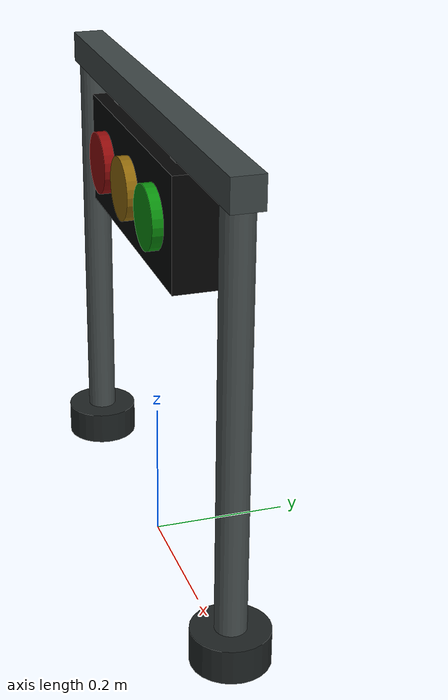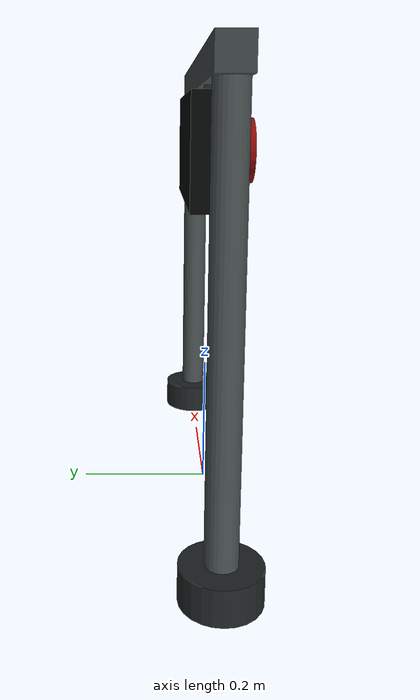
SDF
<?xml version="1.0"?>
<sdf version="1.6">
  <model name="traffic_light">
    <static>true</static>
    <link name="gantry">
      <collision name="left_post_collision">
        <pose>-0.34 0 0.32 0 0 0</pose>
        <geometry><cylinder><radius>0.022</radius><length>0.64</length></cylinder></geometry>
      </collision>
      <collision name="right_post_collision">
        <pose>0.34 0 0.32 0 0 0</pose>
        <geometry><cylinder><radius>0.022</radius><length>0.64</length></cylinder></geometry>
      </collision>
      <collision name="crossbar_collision">
        <pose>0 0 0.66 0 0 0</pose>
        <geometry><box><size>0.75 0.045 0.045</size></box></geometry>
      </collision>
      <collision name="housing_collision">
        <pose>0 0 0.55 0 0 0</pose>
        <geometry><box><size>0.40 0.075 0.16</size></box></geometry>
      </collision>

      <visual name="left_foot">
        <pose>-0.34 0 0.025 0 0 0</pose>
        <geometry><cylinder><radius>0.055</radius><length>0.05</length></cylinder></geometry>
        <material><ambient>0.06 0.07 0.07 1</ambient><diffuse>0.12 0.14 0.14 1</diffuse></material>
      </visual>
      <visual name="right_foot">
        <pose>0.34 0 0.025 0 0 0</pose>
        <geometry><cylinder><radius>0.055</radius><length>0.05</length></cylinder></geometry>
        <material><ambient>0.06 0.07 0.07 1</ambient><diffuse>0.12 0.14 0.14 1</diffuse></material>
      </visual>
      <visual name="left_post">
        <pose>-0.34 0 0.32 0 0 0</pose>
        <geometry><cylinder><radius>0.022</radius><length>0.64</length></cylinder></geometry>
        <material><ambient>0.16 0.18 0.18 1</ambient><diffuse>0.28 0.31 0.31 1</diffuse><specular>0.25 0.25 0.25 1</specular></material>
      </visual>
      <visual name="right_post">
        <pose>0.34 0 0.32 0 0 0</pose>
        <geometry><cylinder><radius>0.022</radius><length>0.64</length></cylinder></geometry>
        <material><ambient>0.16 0.18 0.18 1</ambient><diffuse>0.28 0.31 0.31 1</diffuse><specular>0.25 0.25 0.25 1</specular></material>
      </visual>
      <visual name="crossbar">
        <pose>0 0 0.66 0 0 0</pose>
        <geometry><box><size>0.75 0.045 0.045</size></box></geometry>
        <material><ambient>0.12 0.14 0.14 1</ambient><diffuse>0.24 0.27 0.27 1</diffuse><specular>0.25 0.25 0.25 1</specular></material>
      </visual>
      <visual name="left_hanger">
        <pose>-0.14 0 0.615 0 0 0</pose>
        <geometry><box><size>0.025 0.035 0.07</size></box></geometry>
        <material><ambient>0.06 0.07 0.07 1</ambient><diffuse>0.12 0.14 0.14 1</diffuse></material>
      </visual>
      <visual name="right_hanger">
        <pose>0.14 0 0.615 0 0 0</pose>
        <geometry><box><size>0.025 0.035 0.07</size></box></geometry>
        <material><ambient>0.06 0.07 0.07 1</ambient><diffuse>0.12 0.14 0.14 1</diffuse></material>
      </visual>
      <visual name="housing">
        <pose>0 0 0.55 0 0 0</pose>
        <geometry><box><size>0.40 0.075 0.16</size></box></geometry>
        <material><ambient>0.008 0.010 0.010 1</ambient><diffuse>0.016 0.020 0.020 1</diffuse><specular>0.10 0.10 0.10 1</specular></material>
      </visual>
      <visual name="red_lens">
        <pose>-0.12 -0.044 0.55 1.570796 0 0</pose>
        <geometry><cylinder><radius>0.045</radius><length>0.018</length></cylinder></geometry>
        <material><ambient>0.045 0.003 0.003 1</ambient><diffuse>0.55 0.04 0.04 1</diffuse><specular>0.15 0.15 0.15 1</specular></material>
        <plugin name="red_color_plugin" filename="libgazebo_ros_model_color.so">
          <robotNamespace>/traffic_light</robotNamespace>
          <serviceName>red_lens_color</serviceName>
          <color>0.55 0.04 0.04 1</color>
        </plugin>
      </visual>
      <visual name="yellow_lens">
        <pose>0 -0.044 0.55 1.570796 0 0</pose>
        <geometry><cylinder><radius>0.045</radius><length>0.018</length></cylinder></geometry>
        <material><ambient>0.025 0.015 0.003 1</ambient><diffuse>0.55 0.40 0.04 1</diffuse><specular>0.15 0.15 0.15 1</specular></material>
        <plugin name="yellow_color_plugin" filename="libgazebo_ros_model_color.so">
          <robotNamespace>/traffic_light</robotNamespace>
          <serviceName>yellow_lens_color</serviceName>
          <color>0.55 0.40 0.04 1</color>
        </plugin>
      </visual>
      <visual name="green_lens">
        <pose>0.12 -0.044 0.55 1.570796 0 0</pose>
        <geometry><cylinder><radius>0.045</radius><length>0.018</length></cylinder></geometry>
        <material><ambient>0.003 0.045 0.004 1</ambient><diffuse>0.04 0.55 0.05 1</diffuse><specular>0.15 0.15 0.15 1</specular></material>
        <plugin name="green_color_plugin" filename="libgazebo_ros_model_color.so">
          <robotNamespace>/traffic_light</robotNamespace>
          <serviceName>green_lens_color</serviceName>
          <color>0.04 0.55 0.05 1</color>
        </plugin>
      </visual>
    </link>
  </model>
</sdf>
